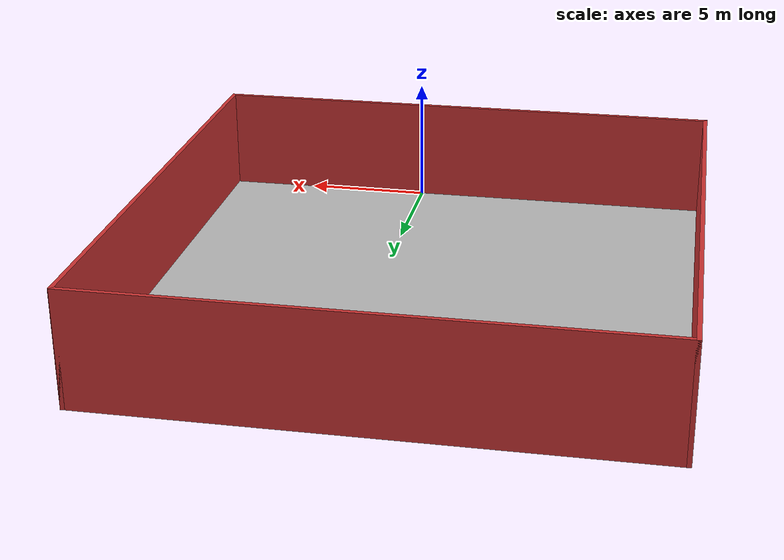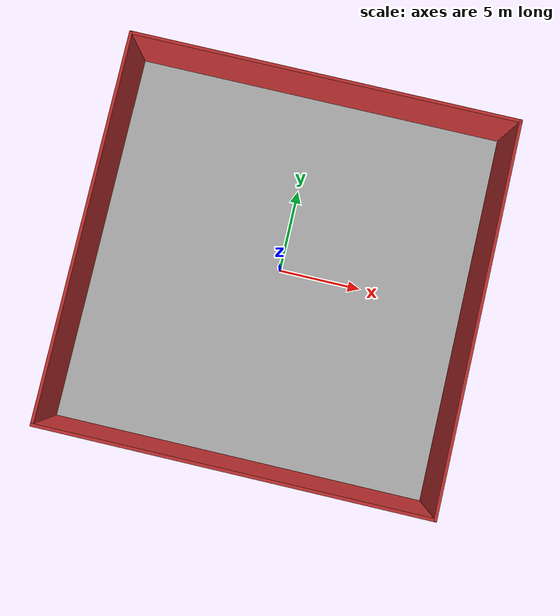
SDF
<sdf version="1.4">
 <world name="oceans_waves">
  <physics name="default_physics" default="true" type="ode">
   <max_step_size>0.002</max_step_size>
   <real_time_factor>1</real_time_factor>
   <real_time_update_rate>500</real_time_update_rate>
  </physics>
  <scene>
   <ambient>0.01 0.01 0.01 1.0</ambient>
   <sky><clouds><speed>12</speed></clouds></sky>
   <shadows>1</shadows>
  </scene>
  <spherical_coordinates>
   <latitude_deg>18.2528</latitude_deg>
   <longitude_deg>109.5107</longitude_deg>
  </spherical_coordinates>
  <light type="directional" name="sun1">
   <pose>50 0 150 0 0 0</pose>
   <diffuse>1 1 1 1</diffuse>
   <specular>.1 .1 .1 1</specular>
   <direction>0.3 0.3 -1</direction>
   <cast_shadows>false</cast_shadows>
  </light>
  <light type="directional" name="sun_diffuse">
   <pose>-50 0 -150 0 0 0</pose>
   <diffuse>0.6 0.6 0.6 1</diffuse>
   <specular>0 0 0 1</specular>
   <direction>-0.3 -0.3 -1</direction>
   <cast_shadows>false</cast_shadows>
  </light>
  <include><uri>model://my_sea_bottom</uri><pose>0 0 -5 0 0 0</pose></include>
  <model name="wall_1">
   <static>true</static>
   <link name="link">
    <collision name="collision"><geometry><box><size>0.2 25.2 5.4</size></box></geometry></collision>
    <visual name="visual">
     <geometry><box><size>0.2 25.2 5.4</size></box></geometry>
     <material><ambient>0.8 0.2 0.2 1</ambient></material>
    </visual>
   </link>
   <pose>12.5 0 -2.7 0 0 0</pose>
  </model>
  <model name="wall_2">
   <static>true</static>
   <link name="link">
    <collision name="collision"><geometry><box><size>0.2 25.2 5.4</size></box></geometry></collision>
    <visual name="visual">
     <geometry><box><size>0.2 25.2 5.4</size></box></geometry>
     <material><ambient>0.8 0.2 0.2 1</ambient></material>
    </visual>
   </link>
   <pose>-12.5 0 -2.7 0 0 0</pose>
  </model>
  <model name="wall_3">
   <static>true</static>
   <link name="link">
    <collision name="collision"><geometry><box><size>25.2 0.2 5.4</size></box></geometry></collision>
    <visual name="visual">
     <geometry><box><size>25.2 0.2 5.4</size></box></geometry>
     <material><ambient>0.8 0.2 0.2 1</ambient></material>
    </visual>
   </link>
   <pose>0 12.5 -2.7 0 0 0</pose>
  </model>
  <model name="wall_4">
   <static>true</static>
   <link name="link">
    <collision name="collision"><geometry><box><size>25.2 0.2 5.4</size></box></geometry></collision>
    <visual name="visual">
     <geometry><box><size>25.2 0.2 5.4</size></box></geometry>
     <material><ambient>0.8 0.2 0.2 1</ambient></material>
    </visual>
   </link>
   <pose>0 -12.5 -2.7 0 0 0</pose>
  </model>
  <plugin name="underwater_current_plugin" filename="libuuv_underwater_current_ros_plugin.so">
   <namespace>hydrodynamics</namespace>
   <constant_current>
    <topic>current_velocity</topic>
    <velocity><mean>0</mean><min>0</min><max>5</max><mu>0.0</mu><noiseAmp>0.0</noiseAmp></velocity>
    <horizontal_angle>
     <mean>0</mean>
     <min>-3.141592653589793238</min>
     <max>3.141592653589793238</max>
     <mu>0.0</mu>
     <noiseAmp>0.0</noiseAmp>
    </horizontal_angle>
    <vertical_angle>
     <mean>0</mean>
     <min>-3.141592653589793238</min>
     <max>3.141592653589793238</max>
     <mu>0.0</mu>
     <noiseAmp>0.0</noiseAmp>
    </vertical_angle>
   </constant_current>
  </plugin>
  <plugin name="sc_interface" filename="libuuv_sc_ros_interface_plugin.so"/>
 </world>
</sdf>

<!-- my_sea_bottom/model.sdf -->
<sdf version="1.5">
  <model name="sea_bottom">
    <static>true</static>
    <link name="sea_bottom">
      <collision name="collision">
        <pose>0 0 0 0 0 0</pose>
        <geometry>
          <box>
            <size>25 25 .1</size>
          </box>
        </geometry>
      </collision>

      <visual name="visual">
        <cast_shadows>false</cast_shadows>
        <pose>0 0 0 0 0 0</pose>
        <geometry>
          <box>
            <size>25 25 .1</size>
          </box>
        </geometry>
        <material>
          <script>
            <uri>file://Media/materials/scripts/sand.material</uri>
            <name>UUVSimulator/SandAndStones</name>
          </script>
          <emissive>
            0.2 0.2 0.2 1.0
          </emissive>
        </material>
      </visual>
    </link>
  </model>
</sdf>
